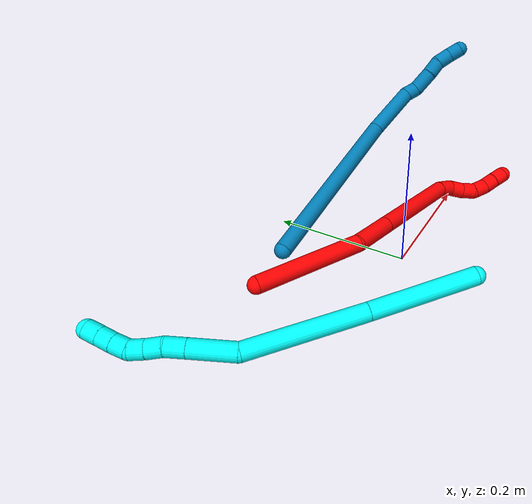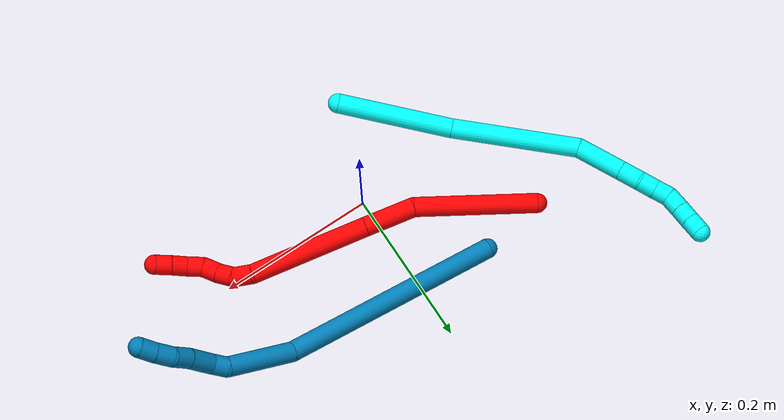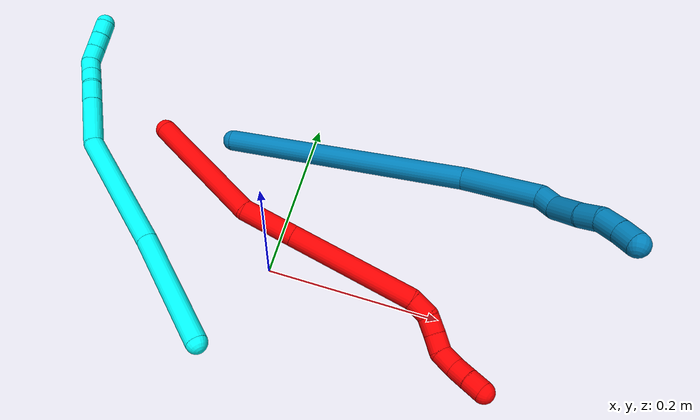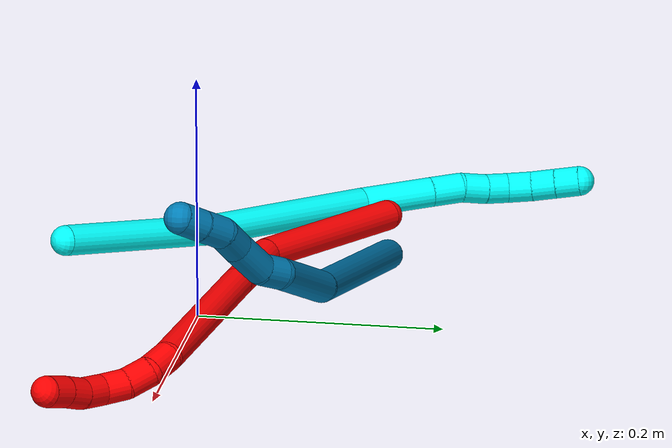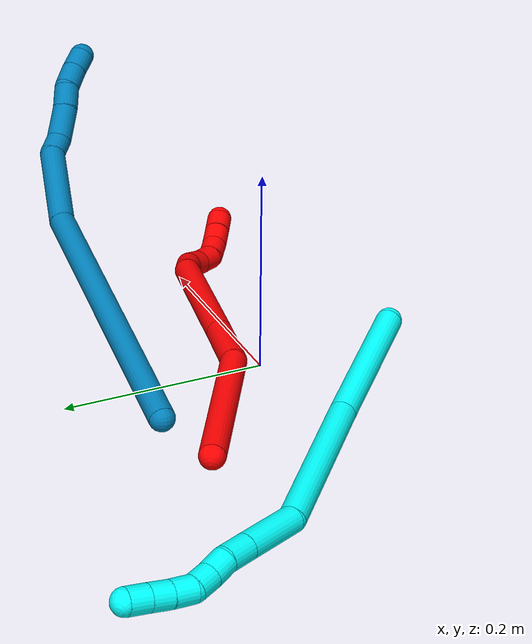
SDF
<sdf version="1.7">
 <world name="default">
  <model name="2">
   <static>0</static>
   <link name="2">
    <collision name="collision-cylinder-e_1_1_4">
     <pose>0.026012 -0.022038 0.069021 0.309059 0.344683 0.054216</pose>
     <geometry><cylinder><radius>0.0125</radius><length>0.153964</length></cylinder></geometry>
     <surface>
      <friction><ode><mu>1.16</mu><mu2>1.16</mu2><slip1>0</slip1><slip2>0</slip2></ode></friction>
      <contact><ode><kp>1e+06</kp><kd>1</kd><max_vel>0</max_vel><min_depth>0.001</min_depth></ode></contact>
     </surface>
    </collision>
    <visual name="visual-cylinder-e_1_1_4">
     <pose>0.026012 -0.022038 0.069021 0.309059 0.344683 0.054216</pose>
     <geometry><cylinder><radius>0.0125</radius><length>0.153964</length></cylinder></geometry>
     <material><ambient>1 0 0 1</ambient></material>
    </visual>
    <collision name="collision-cylinder-e_2_4_5">
     <pose>0.071342 -0.04641 0.163694 0.090748 0.643478 0.030267</pose>
     <geometry><cylinder><radius>0.0125</radius><length>0.064394</length></cylinder></geometry>
     <surface>
      <friction><ode><mu>1.16</mu><mu2>1.16</mu2><slip1>0</slip1><slip2>0</slip2></ode></friction>
      <contact><ode><kp>1e+06</kp><kd>1</kd><max_vel>0</max_vel><min_depth>0.001</min_depth></ode></contact>
     </surface>
    </collision>
    <visual name="visual-cylinder-e_2_4_5">
     <pose>0.071342 -0.04641 0.163694 0.090748 0.643478 0.030267</pose>
     <geometry><cylinder><radius>0.0125</radius><length>0.064394</length></cylinder></geometry>
     <material><ambient>1 0 0 1</ambient></material>
    </visual>
    <collision name="collision-cylinder-e_3_5_6">
     <pose>0.136971 -0.054168 0.249403 0.090072 0.654928 0.030615</pose>
     <geometry><cylinder><radius>0.0125</radius><length>0.152067</length></cylinder></geometry>
     <surface>
      <friction><ode><mu>1.16</mu><mu2>1.16</mu2><slip1>0</slip1><slip2>0</slip2></ode></friction>
      <contact><ode><kp>1e+06</kp><kd>1</kd><max_vel>0</max_vel><min_depth>0.001</min_depth></ode></contact>
     </surface>
    </collision>
    <visual name="visual-cylinder-e_3_5_6">
     <pose>0.136971 -0.054168 0.249403 0.090072 0.654928 0.030615</pose>
     <geometry><cylinder><radius>0.0125</radius><length>0.152067</length></cylinder></geometry>
     <material><ambient>1 0 0 1</ambient></material>
    </visual>
    <collision name="collision-cylinder-e_4_6_7">
     <pose>0.190024 -0.064096 0.318446 0.464582 0.590758 0.143714</pose>
     <geometry><cylinder><radius>0.0125</radius><length>0.024205</length></cylinder></geometry>
     <surface>
      <friction><ode><mu>1.16</mu><mu2>1.16</mu2><slip1>0</slip1><slip2>0</slip2></ode></friction>
      <contact><ode><kp>1e+06</kp><kd>1</kd><max_vel>0</max_vel><min_depth>0.001</min_depth></ode></contact>
     </surface>
    </collision>
    <visual name="visual-cylinder-e_4_6_7">
     <pose>0.190024 -0.064096 0.318446 0.464582 0.590758 0.143714</pose>
     <geometry><cylinder><radius>0.0125</radius><length>0.024205</length></cylinder></geometry>
     <material><ambient>1 0 0 1</ambient></material>
    </visual>
    <collision name="collision-cylinder-e_5_7_8">
     <pose>0.200388 -0.076522 0.334167 0.866286 0.335255 0.156182</pose>
     <geometry><cylinder><radius>0.0125</radius><length>0.022021</length></cylinder></geometry>
     <surface>
      <friction><ode><mu>1.16</mu><mu2>1.16</mu2><slip1>0</slip1><slip2>0</slip2></ode></friction>
      <contact><ode><kp>1e+06</kp><kd>1</kd><max_vel>0</max_vel><min_depth>0.001</min_depth></ode></contact>
     </surface>
    </collision>
    <visual name="visual-cylinder-e_5_7_8">
     <pose>0.200388 -0.076522 0.334167 0.866286 0.335255 0.156182</pose>
     <geometry><cylinder><radius>0.0125</radius><length>0.022021</length></cylinder></geometry>
     <material><ambient>1 0 0 1</ambient></material>
    </visual>
    <collision name="collision-cylinder-e_6_8_9">
     <pose>0.205134 -0.091617 0.348557 0.75278 0.106713 0.04221</pose>
     <geometry><cylinder><radius>0.0125</radius><length>0.021103</length></cylinder></geometry>
     <surface>
      <friction><ode><mu>1.16</mu><mu2>1.16</mu2><slip1>0</slip1><slip2>0</slip2></ode></friction>
      <contact><ode><kp>1e+06</kp><kd>1</kd><max_vel>0</max_vel><min_depth>0.001</min_depth></ode></contact>
     </surface>
    </collision>
    <visual name="visual-cylinder-e_6_8_9">
     <pose>0.205134 -0.091617 0.348557 0.75278 0.106713 0.04221</pose>
     <geometry><cylinder><radius>0.0125</radius><length>0.021103</length></cylinder></geometry>
     <material><ambient>1 0 0 1</ambient></material>
    </visual>
    <collision name="collision-cylinder-e_7_9_10">
     <pose>0.208997 -0.10191 0.366381 0.297818 0.252029 0.038006</pose>
     <geometry><cylinder><radius>0.0125</radius><length>0.021965</length></cylinder></geometry>
     <surface>
      <friction><ode><mu>1.16</mu><mu2>1.16</mu2><slip1>0</slip1><slip2>0</slip2></ode></friction>
      <contact><ode><kp>1e+06</kp><kd>1</kd><max_vel>0</max_vel><min_depth>0.001</min_depth></ode></contact>
     </surface>
    </collision>
    <visual name="visual-cylinder-e_7_9_10">
     <pose>0.208997 -0.10191 0.366381 0.297818 0.252029 0.038006</pose>
     <geometry><cylinder><radius>0.0125</radius><length>0.021965</length></cylinder></geometry>
     <material><ambient>1 0 0 1</ambient></material>
    </visual>
    <collision name="collision-cylinder-e_8_10_11">
     <pose>0.212704 -0.106407 0.38647 0.137835 0.096401 0.006659</pose>
     <geometry><cylinder><radius>0.0125</radius><length>0.020127</length></cylinder></geometry>
     <surface>
      <friction><ode><mu>1.16</mu><mu2>1.16</mu2><slip1>0</slip1><slip2>0</slip2></ode></friction>
      <contact><ode><kp>1e+06</kp><kd>1</kd><max_vel>0</max_vel><min_depth>0.001</min_depth></ode></contact>
     </surface>
    </collision>
    <visual name="visual-cylinder-e_8_10_11">
     <pose>0.212704 -0.106407 0.38647 0.137835 0.096401 0.006659</pose>
     <geometry><cylinder><radius>0.0125</radius><length>0.020127</length></cylinder></geometry>
     <material><ambient>1 0 0 1</ambient></material>
    </visual>
    <collision name="collision-cylinder-e_9_11_2">
     <pose>0.215347 -0.109357 0.406204 0.159008 0.16694 0.013331</pose>
     <geometry><cylinder><radius>0.0125</radius><length>0.020154</length></cylinder></geometry>
     <surface>
      <friction><ode><mu>1.16</mu><mu2>1.16</mu2><slip1>0</slip1><slip2>0</slip2></ode></friction>
      <contact><ode><kp>1e+06</kp><kd>1</kd><max_vel>0</max_vel><min_depth>0.001</min_depth></ode></contact>
     </surface>
    </collision>
    <visual name="visual-cylinder-e_9_11_2">
     <pose>0.215347 -0.109357 0.406204 0.159008 0.16694 0.013331</pose>
     <geometry><cylinder><radius>0.0125</radius><length>0.020154</length></cylinder></geometry>
     <material><ambient>1 0 0 1</ambient></material>
    </visual>
    <collision name="collision-sphere-2">
     <pose>0.217022 -0.11093 0.416016 0 -0 0</pose>
     <geometry><sphere><radius>0.0125</radius></sphere></geometry>
     <surface>
      <friction><ode><mu>1.16</mu><mu2>1.16</mu2><slip1>0</slip1><slip2>0</slip2></ode></friction>
      <contact><ode><kp>1e+06</kp><kd>1</kd><max_vel>0</max_vel><min_depth>0.001</min_depth></ode></contact>
     </surface>
    </collision>
    <visual name="visual-sphere-2">
     <pose>0.217022 -0.11093 0.416016 0 -0 0</pose>
     <geometry><sphere><radius>0.0125</radius></sphere></geometry>
     <material><ambient>1 0 0 1</ambient></material>
    </visual>
    <collision name="collision-sphere-11">
     <pose>0.213673 -0.107784 0.396392 0 -0 0</pose>
     <geometry><sphere><radius>0.0125</radius></sphere></geometry>
     <surface>
      <friction><ode><mu>1.16</mu><mu2>1.16</mu2><slip1>0</slip1><slip2>0</slip2></ode></friction>
      <contact><ode><kp>1e+06</kp><kd>1</kd><max_vel>0</max_vel><min_depth>0.001</min_depth></ode></contact>
     </surface>
    </collision>
    <visual name="visual-sphere-11">
     <pose>0.213673 -0.107784 0.396392 0 -0 0</pose>
     <geometry><sphere><radius>0.0125</radius></sphere></geometry>
     <material><ambient>1 0 0 1</ambient></material>
    </visual>
    <collision name="collision-sphere-10">
     <pose>0.211736 -0.105031 0.376548 0 -0 0</pose>
     <geometry><sphere><radius>0.0125</radius></sphere></geometry>
     <surface>
      <friction><ode><mu>1.16</mu><mu2>1.16</mu2><slip1>0</slip1><slip2>0</slip2></ode></friction>
      <contact><ode><kp>1e+06</kp><kd>1</kd><max_vel>0</max_vel><min_depth>0.001</min_depth></ode></contact>
     </surface>
    </collision>
    <visual name="visual-sphere-10">
     <pose>0.211736 -0.105031 0.376548 0 -0 0</pose>
     <geometry><sphere><radius>0.0125</radius></sphere></geometry>
     <material><ambient>1 0 0 1</ambient></material>
    </visual>
    <collision name="collision-sphere-9">
     <pose>0.206258 -0.098789 0.356214 0 -0 0</pose>
     <geometry><sphere><radius>0.0125</radius></sphere></geometry>
     <surface>
      <friction><ode><mu>1.16</mu><mu2>1.16</mu2><slip1>0</slip1><slip2>0</slip2></ode></friction>
      <contact><ode><kp>1e+06</kp><kd>1</kd><max_vel>0</max_vel><min_depth>0.001</min_depth></ode></contact>
     </surface>
    </collision>
    <visual name="visual-sphere-9">
     <pose>0.206258 -0.098789 0.356214 0 -0 0</pose>
     <geometry><sphere><radius>0.0125</radius></sphere></geometry>
     <material><ambient>1 0 0 1</ambient></material>
    </visual>
    <collision name="collision-sphere-4">
     <pose>0.052024 -0.044076 0.138042 0 -0 0</pose>
     <geometry><sphere><radius>0.0125</radius></sphere></geometry>
     <surface>
      <friction><ode><mu>1.16</mu><mu2>1.16</mu2><slip1>0</slip1><slip2>0</slip2></ode></friction>
      <contact><ode><kp>1e+06</kp><kd>1</kd><max_vel>0</max_vel><min_depth>0.001</min_depth></ode></contact>
     </surface>
    </collision>
    <visual name="visual-sphere-4">
     <pose>0.052024 -0.044076 0.138042 0 -0 0</pose>
     <geometry><sphere><radius>0.0125</radius></sphere></geometry>
     <material><ambient>1 0 0 1</ambient></material>
    </visual>
    <collision name="collision-sphere-1">
     <geometry><sphere><radius>0.0125</radius></sphere></geometry>
     <surface>
      <friction><ode><mu>1.16</mu><mu2>1.16</mu2><slip1>0</slip1><slip2>0</slip2></ode></friction>
      <contact><ode><kp>1e+06</kp><kd>1</kd><max_vel>0</max_vel><min_depth>0.001</min_depth></ode></contact>
     </surface>
    </collision>
    <visual name="visual-sphere-1">
     <geometry><sphere><radius>0.0125</radius></sphere></geometry>
     <material><ambient>1 0 0 1</ambient></material>
    </visual>
    <collision name="collision-sphere-8">
     <pose>0.204011 -0.084444 0.340901 0 -0 0</pose>
     <geometry><sphere><radius>0.0125</radius></sphere></geometry>
     <surface>
      <friction><ode><mu>1.16</mu><mu2>1.16</mu2><slip1>0</slip1><slip2>0</slip2></ode></friction>
      <contact><ode><kp>1e+06</kp><kd>1</kd><max_vel>0</max_vel><min_depth>0.001</min_depth></ode></contact>
     </surface>
    </collision>
    <visual name="visual-sphere-8">
     <pose>0.204011 -0.084444 0.340901 0 -0 0</pose>
     <geometry><sphere><radius>0.0125</radius></sphere></geometry>
     <material><ambient>1 0 0 1</ambient></material>
    </visual>
    <collision name="collision-sphere-5">
     <pose>0.090659 -0.048744 0.189346 0 -0 0</pose>
     <geometry><sphere><radius>0.0125</radius></sphere></geometry>
     <surface>
      <friction><ode><mu>1.16</mu><mu2>1.16</mu2><slip1>0</slip1><slip2>0</slip2></ode></friction>
      <contact><ode><kp>1e+06</kp><kd>1</kd><max_vel>0</max_vel><min_depth>0.001</min_depth></ode></contact>
     </surface>
    </collision>
    <visual name="visual-sphere-5">
     <pose>0.090659 -0.048744 0.189346 0 -0 0</pose>
     <geometry><sphere><radius>0.0125</radius></sphere></geometry>
     <material><ambient>1 0 0 1</ambient></material>
    </visual>
    <collision name="collision-sphere-6">
     <pose>0.183283 -0.059592 0.30946 0 -0 0</pose>
     <geometry><sphere><radius>0.0125</radius></sphere></geometry>
     <surface>
      <friction><ode><mu>1.16</mu><mu2>1.16</mu2><slip1>0</slip1><slip2>0</slip2></ode></friction>
      <contact><ode><kp>1e+06</kp><kd>1</kd><max_vel>0</max_vel><min_depth>0.001</min_depth></ode></contact>
     </surface>
    </collision>
    <visual name="visual-sphere-6">
     <pose>0.183283 -0.059592 0.30946 0 -0 0</pose>
     <geometry><sphere><radius>0.0125</radius></sphere></geometry>
     <material><ambient>1 0 0 1</ambient></material>
    </visual>
    <collision name="collision-sphere-7">
     <pose>0.196766 -0.0686 0.327433 0 -0 0</pose>
     <geometry><sphere><radius>0.0125</radius></sphere></geometry>
     <surface>
      <friction><ode><mu>1.16</mu><mu2>1.16</mu2><slip1>0</slip1><slip2>0</slip2></ode></friction>
      <contact><ode><kp>1e+06</kp><kd>1</kd><max_vel>0</max_vel><min_depth>0.001</min_depth></ode></contact>
     </surface>
    </collision>
    <visual name="visual-sphere-7">
     <pose>0.196766 -0.0686 0.327433 0 -0 0</pose>
     <geometry><sphere><radius>0.0125</radius></sphere></geometry>
     <material><ambient>1 0 0 1</ambient></material>
    </visual>
    <inertial>
     <pose>0.111962 -0.052746 0.211058 0 -0 0</pose>
     <mass>0.5</mass>
     <inertia>
      <ixx>0.000599</ixx>
      <ixy>0</ixy>
      <ixz>0</ixz>
      <iyy>0.000644</iyy>
      <iyz>0</iyz>
      <izz>-0.000156</izz>
     </inertia>
    </inertial>
   </link>
   <pose>-0.177304 0.127289 0.032581 0.840069 0.752347 0.495847</pose>
  </model>
  <model name="3">
   <static>0</static>
   <link name="3">
    <collision name="collision-cylinder-e_1_1_4">
     <pose>0.000209 -0.001798 0.072983 0.024633 0.002867 3.5e-05</pose>
     <geometry><cylinder><radius>0.0125</radius><length>0.146011</length></cylinder></geometry>
     <surface>
      <friction><ode><mu>1.16</mu><mu2>1.16</mu2><slip1>0</slip1><slip2>0</slip2></ode></friction>
      <contact><ode><kp>1e+06</kp><kd>1</kd><max_vel>0</max_vel><min_depth>0.001</min_depth></ode></contact>
     </surface>
    </collision>
    <visual name="visual-cylinder-e_1_1_4">
     <pose>0.000209 -0.001798 0.072983 0.024633 0.002867 3.5e-05</pose>
     <geometry><cylinder><radius>0.0125</radius><length>0.146011</length></cylinder></geometry>
     <material><ambient>0.003922 1 0.996078 1</ambient></material>
    </visual>
    <collision name="collision-cylinder-e_2_4_5">
     <pose>0.006374 -0.001584 0.227092 -0.024794 0.073257 -0.000909</pose>
     <geometry><cylinder><radius>0.0125</radius><length>0.162738</length></cylinder></geometry>
     <surface>
      <friction><ode><mu>1.16</mu><mu2>1.16</mu2><slip1>0</slip1><slip2>0</slip2></ode></friction>
      <contact><ode><kp>1e+06</kp><kd>1</kd><max_vel>0</max_vel><min_depth>0.001</min_depth></ode></contact>
     </surface>
    </collision>
    <visual name="visual-cylinder-e_2_4_5">
     <pose>0.006374 -0.001584 0.227092 -0.024794 0.073257 -0.000909</pose>
     <geometry><cylinder><radius>0.0125</radius><length>0.162738</length></cylinder></geometry>
     <material><ambient>0.003922 1 0.996078 1</ambient></material>
    </visual>
    <collision name="collision-cylinder-e_3_5_6">
     <pose>0.005232 0.009279 0.336535 -0.302951 -0.234828 0.036007</pose>
     <geometry><cylinder><radius>0.0125</radius><length>0.061012</length></cylinder></geometry>
     <surface>
      <friction><ode><mu>1.16</mu><mu2>1.16</mu2><slip1>0</slip1><slip2>0</slip2></ode></friction>
      <contact><ode><kp>1e+06</kp><kd>1</kd><max_vel>0</max_vel><min_depth>0.001</min_depth></ode></contact>
     </surface>
    </collision>
    <visual name="visual-cylinder-e_3_5_6">
     <pose>0.005232 0.009279 0.336535 -0.302951 -0.234828 0.036007</pose>
     <geometry><cylinder><radius>0.0125</radius><length>0.061012</length></cylinder></geometry>
     <material><ambient>0.003922 1 0.996078 1</ambient></material>
    </visual>
    <collision name="collision-cylinder-e_4_6_7">
     <pose>-0.004971 0.021889 0.377201 -0.295496 -0.23606 0.035294</pose>
     <geometry><cylinder><radius>0.0125</radius><length>0.026551</length></cylinder></geometry>
     <surface>
      <friction><ode><mu>1.16</mu><mu2>1.16</mu2><slip1>0</slip1><slip2>0</slip2></ode></friction>
      <contact><ode><kp>1e+06</kp><kd>1</kd><max_vel>0</max_vel><min_depth>0.001</min_depth></ode></contact>
     </surface>
    </collision>
    <visual name="visual-cylinder-e_4_6_7">
     <pose>-0.004971 0.021889 0.377201 -0.295496 -0.23606 0.035294</pose>
     <geometry><cylinder><radius>0.0125</radius><length>0.026551</length></cylinder></geometry>
     <material><ambient>0.003922 1 0.996078 1</ambient></material>
    </visual>
    <collision name="collision-cylinder-e_5_7_8">
     <pose>-0.011036 0.026255 0.399893 -0.058655 -0.278266 0.008216</pose>
     <geometry><cylinder><radius>0.0125</radius><length>0.021553</length></cylinder></geometry>
     <surface>
      <friction><ode><mu>1.16</mu><mu2>1.16</mu2><slip1>0</slip1><slip2>0</slip2></ode></friction>
      <contact><ode><kp>1e+06</kp><kd>1</kd><max_vel>0</max_vel><min_depth>0.001</min_depth></ode></contact>
     </surface>
    </collision>
    <visual name="visual-cylinder-e_5_7_8">
     <pose>-0.011036 0.026255 0.399893 -0.058655 -0.278266 0.008216</pose>
     <geometry><cylinder><radius>0.0125</radius><length>0.021553</length></cylinder></geometry>
     <material><ambient>0.003922 1 0.996078 1</ambient></material>
    </visual>
    <collision name="collision-cylinder-e_6_8_9">
     <pose>-0.016438 0.028509 0.419985 -0.167293 -0.242179 0.020404</pose>
     <geometry><cylinder><radius>0.0125</radius><length>0.020368</length></cylinder></geometry>
     <surface>
      <friction><ode><mu>1.16</mu><mu2>1.16</mu2><slip1>0</slip1><slip2>0</slip2></ode></friction>
      <contact><ode><kp>1e+06</kp><kd>1</kd><max_vel>0</max_vel><min_depth>0.001</min_depth></ode></contact>
     </surface>
    </collision>
    <visual name="visual-cylinder-e_6_8_9">
     <pose>-0.016438 0.028509 0.419985 -0.167293 -0.242179 0.020404</pose>
     <geometry><cylinder><radius>0.0125</radius><length>0.020368</length></cylinder></geometry>
     <material><ambient>0.003922 1 0.996078 1</ambient></material>
    </visual>
    <collision name="collision-cylinder-e_7_9_10">
     <pose>-0.024339 0.034706 0.437724 -0.517794 -0.53568 0.145107</pose>
     <geometry><cylinder><radius>0.0125</radius><length>0.021385</length></cylinder></geometry>
     <surface>
      <friction><ode><mu>1.16</mu><mu2>1.16</mu2><slip1>0</slip1><slip2>0</slip2></ode></friction>
      <contact><ode><kp>1e+06</kp><kd>1</kd><max_vel>0</max_vel><min_depth>0.001</min_depth></ode></contact>
     </surface>
    </collision>
    <visual name="visual-cylinder-e_7_9_10">
     <pose>-0.024339 0.034706 0.437724 -0.517794 -0.53568 0.145107</pose>
     <geometry><cylinder><radius>0.0125</radius><length>0.021385</length></cylinder></geometry>
     <material><ambient>0.003922 1 0.996078 1</ambient></material>
    </visual>
    <collision name="collision-cylinder-e_8_10_11">
     <pose>-0.034874 0.044125 0.452839 -0.599276 -0.53186 0.167903</pose>
     <geometry><cylinder><radius>0.0125</radius><length>0.020025</length></cylinder></geometry>
     <surface>
      <friction><ode><mu>1.16</mu><mu2>1.16</mu2><slip1>0</slip1><slip2>0</slip2></ode></friction>
      <contact><ode><kp>1e+06</kp><kd>1</kd><max_vel>0</max_vel><min_depth>0.001</min_depth></ode></contact>
     </surface>
    </collision>
    <visual name="visual-cylinder-e_8_10_11">
     <pose>-0.034874 0.044125 0.452839 -0.599276 -0.53186 0.167903</pose>
     <geometry><cylinder><radius>0.0125</radius><length>0.020025</length></cylinder></geometry>
     <material><ambient>0.003922 1 0.996078 1</ambient></material>
    </visual>
    <collision name="collision-cylinder-e_9_11_2">
     <pose>-0.045045 0.053855 0.467314 -0.584526 -0.524061 0.161041</pose>
     <geometry><cylinder><radius>0.0125</radius><length>0.020357</length></cylinder></geometry>
     <surface>
      <friction><ode><mu>1.16</mu><mu2>1.16</mu2><slip1>0</slip1><slip2>0</slip2></ode></friction>
      <contact><ode><kp>1e+06</kp><kd>1</kd><max_vel>0</max_vel><min_depth>0.001</min_depth></ode></contact>
     </surface>
    </collision>
    <visual name="visual-cylinder-e_9_11_2">
     <pose>-0.045045 0.053855 0.467314 -0.584526 -0.524061 0.161041</pose>
     <geometry><cylinder><radius>0.0125</radius><length>0.020357</length></cylinder></geometry>
     <material><ambient>0.003922 1 0.996078 1</ambient></material>
    </visual>
    <collision name="collision-sphere-2">
     <pose>-0.050139 0.058718 0.474664 0 -0 0</pose>
     <geometry><sphere><radius>0.0125</radius></sphere></geometry>
     <surface>
      <friction><ode><mu>1.16</mu><mu2>1.16</mu2><slip1>0</slip1><slip2>0</slip2></ode></friction>
      <contact><ode><kp>1e+06</kp><kd>1</kd><max_vel>0</max_vel><min_depth>0.001</min_depth></ode></contact>
     </surface>
    </collision>
    <visual name="visual-sphere-2">
     <pose>-0.050139 0.058718 0.474664 0 -0 0</pose>
     <geometry><sphere><radius>0.0125</radius></sphere></geometry>
     <material><ambient>0.003922 1 0.996078 1</ambient></material>
    </visual>
    <collision name="collision-sphere-11">
     <pose>-0.039952 0.048992 0.459965 0 -0 0</pose>
     <geometry><sphere><radius>0.0125</radius></sphere></geometry>
     <surface>
      <friction><ode><mu>1.16</mu><mu2>1.16</mu2><slip1>0</slip1><slip2>0</slip2></ode></friction>
      <contact><ode><kp>1e+06</kp><kd>1</kd><max_vel>0</max_vel><min_depth>0.001</min_depth></ode></contact>
     </surface>
    </collision>
    <visual name="visual-sphere-11">
     <pose>-0.039952 0.048992 0.459965 0 -0 0</pose>
     <geometry><sphere><radius>0.0125</radius></sphere></geometry>
     <material><ambient>0.003922 1 0.996078 1</ambient></material>
    </visual>
    <collision name="collision-sphere-10">
     <pose>-0.029796 0.039257 0.445713 0 -0 0</pose>
     <geometry><sphere><radius>0.0125</radius></sphere></geometry>
     <surface>
      <friction><ode><mu>1.16</mu><mu2>1.16</mu2><slip1>0</slip1><slip2>0</slip2></ode></friction>
      <contact><ode><kp>1e+06</kp><kd>1</kd><max_vel>0</max_vel><min_depth>0.001</min_depth></ode></contact>
     </surface>
    </collision>
    <visual name="visual-sphere-10">
     <pose>-0.029796 0.039257 0.445713 0 -0 0</pose>
     <geometry><sphere><radius>0.0125</radius></sphere></geometry>
     <material><ambient>0.003922 1 0.996078 1</ambient></material>
    </visual>
    <collision name="collision-sphere-9">
     <pose>-0.018881 0.030155 0.429734 0 -0 0</pose>
     <geometry><sphere><radius>0.0125</radius></sphere></geometry>
     <surface>
      <friction><ode><mu>1.16</mu><mu2>1.16</mu2><slip1>0</slip1><slip2>0</slip2></ode></friction>
      <contact><ode><kp>1e+06</kp><kd>1</kd><max_vel>0</max_vel><min_depth>0.001</min_depth></ode></contact>
     </surface>
    </collision>
    <visual name="visual-sphere-9">
     <pose>-0.018881 0.030155 0.429734 0 -0 0</pose>
     <geometry><sphere><radius>0.0125</radius></sphere></geometry>
     <material><ambient>0.003922 1 0.996078 1</ambient></material>
    </visual>
    <collision name="collision-sphere-4">
     <pose>0.000419 -0.003596 0.145967 0 -0 0</pose>
     <geometry><sphere><radius>0.0125</radius></sphere></geometry>
     <surface>
      <friction><ode><mu>1.16</mu><mu2>1.16</mu2><slip1>0</slip1><slip2>0</slip2></ode></friction>
      <contact><ode><kp>1e+06</kp><kd>1</kd><max_vel>0</max_vel><min_depth>0.001</min_depth></ode></contact>
     </surface>
    </collision>
    <visual name="visual-sphere-4">
     <pose>0.000419 -0.003596 0.145967 0 -0 0</pose>
     <geometry><sphere><radius>0.0125</radius></sphere></geometry>
     <material><ambient>0.003922 1 0.996078 1</ambient></material>
    </visual>
    <collision name="collision-sphere-1">
     <geometry><sphere><radius>0.0125</radius></sphere></geometry>
     <surface>
      <friction><ode><mu>1.16</mu><mu2>1.16</mu2><slip1>0</slip1><slip2>0</slip2></ode></friction>
      <contact><ode><kp>1e+06</kp><kd>1</kd><max_vel>0</max_vel><min_depth>0.001</min_depth></ode></contact>
     </surface>
    </collision>
    <visual name="visual-sphere-1">
     <geometry><sphere><radius>0.0125</radius></sphere></geometry>
     <material><ambient>0.003922 1 0.996078 1</ambient></material>
    </visual>
    <collision name="collision-sphere-8">
     <pose>-0.013996 0.026862 0.410237 0 -0 0</pose>
     <geometry><sphere><radius>0.0125</radius></sphere></geometry>
     <surface>
      <friction><ode><mu>1.16</mu><mu2>1.16</mu2><slip1>0</slip1><slip2>0</slip2></ode></friction>
      <contact><ode><kp>1e+06</kp><kd>1</kd><max_vel>0</max_vel><min_depth>0.001</min_depth></ode></contact>
     </surface>
    </collision>
    <visual name="visual-sphere-8">
     <pose>-0.013996 0.026862 0.410237 0 -0 0</pose>
     <geometry><sphere><radius>0.0125</radius></sphere></geometry>
     <material><ambient>0.003922 1 0.996078 1</ambient></material>
    </visual>
    <collision name="collision-sphere-5">
     <pose>0.01233 0.000427 0.308218 0 -0 0</pose>
     <geometry><sphere><radius>0.0125</radius></sphere></geometry>
     <surface>
      <friction><ode><mu>1.16</mu><mu2>1.16</mu2><slip1>0</slip1><slip2>0</slip2></ode></friction>
      <contact><ode><kp>1e+06</kp><kd>1</kd><max_vel>0</max_vel><min_depth>0.001</min_depth></ode></contact>
     </surface>
    </collision>
    <visual name="visual-sphere-5">
     <pose>0.01233 0.000427 0.308218 0 -0 0</pose>
     <geometry><sphere><radius>0.0125</radius></sphere></geometry>
     <material><ambient>0.003922 1 0.996078 1</ambient></material>
    </visual>
    <collision name="collision-sphere-6">
     <pose>-0.001866 0.01813 0.364853 0 -0 0</pose>
     <geometry><sphere><radius>0.0125</radius></sphere></geometry>
     <surface>
      <friction><ode><mu>1.16</mu><mu2>1.16</mu2><slip1>0</slip1><slip2>0</slip2></ode></friction>
      <contact><ode><kp>1e+06</kp><kd>1</kd><max_vel>0</max_vel><min_depth>0.001</min_depth></ode></contact>
     </surface>
    </collision>
    <visual name="visual-sphere-6">
     <pose>-0.001866 0.01813 0.364853 0 -0 0</pose>
     <geometry><sphere><radius>0.0125</radius></sphere></geometry>
     <material><ambient>0.003922 1 0.996078 1</ambient></material>
    </visual>
    <collision name="collision-sphere-7">
     <pose>-0.008076 0.025648 0.389549 0 -0 0</pose>
     <geometry><sphere><radius>0.0125</radius></sphere></geometry>
     <surface>
      <friction><ode><mu>1.16</mu><mu2>1.16</mu2><slip1>0</slip1><slip2>0</slip2></ode></friction>
      <contact><ode><kp>1e+06</kp><kd>1</kd><max_vel>0</max_vel><min_depth>0.001</min_depth></ode></contact>
     </surface>
    </collision>
    <visual name="visual-sphere-7">
     <pose>-0.008076 0.025648 0.389549 0 -0 0</pose>
     <geometry><sphere><radius>0.0125</radius></sphere></geometry>
     <material><ambient>0.003922 1 0.996078 1</ambient></material>
    </visual>
    <inertial>
     <pose>-0.002907 0.008991 0.246551 0 -0 0</pose>
     <mass>0.5</mass>
     <inertia><ixx>0.000657</ixx><ixy>0</ixy><ixz>0</ixz><iyy>0.000666</iyy><iyz>0</iyz><izz>6e-06</izz></inertia>
    </inertial>
   </link>
   <pose>-0.040178 -0.115988 0.044074 1.70431 -0.409565 -2.40713</pose>
  </model>
  <model name="9">
   <static>0</static>
   <link name="9">
    <collision name="collision-cylinder-e_1_1_4">
     <pose>0.143326 -0.015126 0.001772 1.45418 1.46494 1.34968</pose>
     <geometry><cylinder><radius>0.0125</radius><length>0.288265</length></cylinder></geometry>
     <surface>
      <friction><ode><mu>1.16</mu><mu2>1.16</mu2><slip1>0</slip1><slip2>0</slip2></ode></friction>
      <contact><ode><kp>1e+06</kp><kd>1</kd><max_vel>0</max_vel><min_depth>0.001</min_depth></ode></contact>
     </surface>
    </collision>
    <visual name="visual-cylinder-e_1_1_4">
     <pose>0.143326 -0.015126 0.001772 1.45418 1.46494 1.34968</pose>
     <geometry><cylinder><radius>0.0125</radius><length>0.288265</length></cylinder></geometry>
     <material><ambient>0 0.490196 0.709804 1</ambient></material>
    </visual>
    <collision name="collision-cylinder-e_2_4_5">
     <pose>0.329931 -0.025925 0.012113 -0.467651 1.35253 -0.377727</pose>
     <geometry><cylinder><radius>0.0125</radius><length>0.088664</length></cylinder></geometry>
     <surface>
      <friction><ode><mu>1.16</mu><mu2>1.16</mu2><slip1>0</slip1><slip2>0</slip2></ode></friction>
      <contact><ode><kp>1e+06</kp><kd>1</kd><max_vel>0</max_vel><min_depth>0.001</min_depth></ode></contact>
     </surface>
    </collision>
    <visual name="visual-cylinder-e_2_4_5">
     <pose>0.329931 -0.025925 0.012113 -0.467651 1.35253 -0.377727</pose>
     <geometry><cylinder><radius>0.0125</radius><length>0.088664</length></cylinder></geometry>
     <material><ambient>0 0.490196 0.709804 1</ambient></material>
    </visual>
    <collision name="collision-cylinder-e_3_5_6">
     <pose>0.381365 -0.020299 0.026696 -0.212639 0.924383 -0.106234</pose>
     <geometry><cylinder><radius>0.0125</radius><length>0.020429</length></cylinder></geometry>
     <surface>
      <friction><ode><mu>1.16</mu><mu2>1.16</mu2><slip1>0</slip1><slip2>0</slip2></ode></friction>
      <contact><ode><kp>1e+06</kp><kd>1</kd><max_vel>0</max_vel><min_depth>0.001</min_depth></ode></contact>
     </surface>
    </collision>
    <visual name="visual-cylinder-e_3_5_6">
     <pose>0.381365 -0.020299 0.026696 -0.212639 0.924383 -0.106234</pose>
     <geometry><cylinder><radius>0.0125</radius><length>0.020429</length></cylinder></geometry>
     <material><ambient>0 0.490196 0.709804 1</ambient></material>
    </visual>
    <collision name="collision-cylinder-e_4_6_7">
     <pose>0.403319 -0.010975 0.039726 -0.852344 0.91308 -0.438779</pose>
     <geometry><cylinder><radius>0.0125</radius><length>0.034876</length></cylinder></geometry>
     <surface>
      <friction><ode><mu>1.16</mu><mu2>1.16</mu2><slip1>0</slip1><slip2>0</slip2></ode></friction>
      <contact><ode><kp>1e+06</kp><kd>1</kd><max_vel>0</max_vel><min_depth>0.001</min_depth></ode></contact>
     </surface>
    </collision>
    <visual name="visual-cylinder-e_4_6_7">
     <pose>0.403319 -0.010975 0.039726 -0.852344 0.91308 -0.438779</pose>
     <geometry><cylinder><radius>0.0125</radius><length>0.034876</length></cylinder></geometry>
     <material><ambient>0 0.490196 0.709804 1</ambient></material>
    </visual>
    <collision name="collision-cylinder-e_5_7_8">
     <pose>0.427264 0.002034 0.050322 -0.948062 1.02679 -0.563163</pose>
     <geometry><cylinder><radius>0.0125</radius><length>0.023712</length></cylinder></geometry>
     <surface>
      <friction><ode><mu>1.16</mu><mu2>1.16</mu2><slip1>0</slip1><slip2>0</slip2></ode></friction>
      <contact><ode><kp>1e+06</kp><kd>1</kd><max_vel>0</max_vel><min_depth>0.001</min_depth></ode></contact>
     </surface>
    </collision>
    <visual name="visual-cylinder-e_5_7_8">
     <pose>0.427264 0.002034 0.050322 -0.948062 1.02679 -0.563163</pose>
     <geometry><cylinder><radius>0.0125</radius><length>0.023712</length></cylinder></geometry>
     <material><ambient>0 0.490196 0.709804 1</ambient></material>
    </visual>
    <collision name="collision-cylinder-e_6_8_9">
     <pose>0.446662 0.009542 0.060478 -0.366338 0.920148 -0.18308</pose>
     <geometry><cylinder><radius>0.0125</radius><length>0.023259</length></cylinder></geometry>
     <surface>
      <friction><ode><mu>1.16</mu><mu2>1.16</mu2><slip1>0</slip1><slip2>0</slip2></ode></friction>
      <contact><ode><kp>1e+06</kp><kd>1</kd><max_vel>0</max_vel><min_depth>0.001</min_depth></ode></contact>
     </surface>
    </collision>
    <visual name="visual-cylinder-e_6_8_9">
     <pose>0.446662 0.009542 0.060478 -0.366338 0.920148 -0.18308</pose>
     <geometry><cylinder><radius>0.0125</radius><length>0.023259</length></cylinder></geometry>
     <material><ambient>0 0.490196 0.709804 1</ambient></material>
    </visual>
    <collision name="collision-cylinder-e_7_9_2">
     <pose>0.463635 0.014515 0.073575 -0.359433 0.83668 -0.161191</pose>
     <geometry><cylinder><radius>0.0125</radius><length>0.020795</length></cylinder></geometry>
     <surface>
      <friction><ode><mu>1.16</mu><mu2>1.16</mu2><slip1>0</slip1><slip2>0</slip2></ode></friction>
      <contact><ode><kp>1e+06</kp><kd>1</kd><max_vel>0</max_vel><min_depth>0.001</min_depth></ode></contact>
     </surface>
    </collision>
    <visual name="visual-cylinder-e_7_9_2">
     <pose>0.463635 0.014515 0.073575 -0.359433 0.83668 -0.161191</pose>
     <geometry><cylinder><radius>0.0125</radius><length>0.020795</length></cylinder></geometry>
     <material><ambient>0 0.490196 0.709804 1</ambient></material>
    </visual>
    <collision name="collision-sphere-2">
     <pose>0.471354 0.016966 0.080095 0 -0 0</pose>
     <geometry><sphere><radius>0.0125</radius></sphere></geometry>
     <surface>
      <friction><ode><mu>1.16</mu><mu2>1.16</mu2><slip1>0</slip1><slip2>0</slip2></ode></friction>
      <contact><ode><kp>1e+06</kp><kd>1</kd><max_vel>0</max_vel><min_depth>0.001</min_depth></ode></contact>
     </surface>
    </collision>
    <visual name="visual-sphere-2">
     <pose>0.471354 0.016966 0.080095 0 -0 0</pose>
     <geometry><sphere><radius>0.0125</radius></sphere></geometry>
     <material><ambient>0 0.490196 0.709804 1</ambient></material>
    </visual>
    <collision name="collision-sphere-9">
     <pose>0.455916 0.012065 0.067054 0 -0 0</pose>
     <geometry><sphere><radius>0.0125</radius></sphere></geometry>
     <surface>
      <friction><ode><mu>1.16</mu><mu2>1.16</mu2><slip1>0</slip1><slip2>0</slip2></ode></friction>
      <contact><ode><kp>1e+06</kp><kd>1</kd><max_vel>0</max_vel><min_depth>0.001</min_depth></ode></contact>
     </surface>
    </collision>
    <visual name="visual-sphere-9">
     <pose>0.455916 0.012065 0.067054 0 -0 0</pose>
     <geometry><sphere><radius>0.0125</radius></sphere></geometry>
     <material><ambient>0 0.490196 0.709804 1</ambient></material>
    </visual>
    <collision name="collision-sphere-4">
     <pose>0.286651 -0.030252 0.003544 0 -0 0</pose>
     <geometry><sphere><radius>0.0125</radius></sphere></geometry>
     <surface>
      <friction><ode><mu>1.16</mu><mu2>1.16</mu2><slip1>0</slip1><slip2>0</slip2></ode></friction>
      <contact><ode><kp>1e+06</kp><kd>1</kd><max_vel>0</max_vel><min_depth>0.001</min_depth></ode></contact>
     </surface>
    </collision>
    <visual name="visual-sphere-4">
     <pose>0.286651 -0.030252 0.003544 0 -0 0</pose>
     <geometry><sphere><radius>0.0125</radius></sphere></geometry>
     <material><ambient>0 0.490196 0.709804 1</ambient></material>
    </visual>
    <collision name="collision-sphere-1">
     <geometry><sphere><radius>0.0125</radius></sphere></geometry>
     <surface>
      <friction><ode><mu>1.16</mu><mu2>1.16</mu2><slip1>0</slip1><slip2>0</slip2></ode></friction>
      <contact><ode><kp>1e+06</kp><kd>1</kd><max_vel>0</max_vel><min_depth>0.001</min_depth></ode></contact>
     </surface>
    </collision>
    <visual name="visual-sphere-1">
     <geometry><sphere><radius>0.0125</radius></sphere></geometry>
     <material><ambient>0 0.490196 0.709804 1</ambient></material>
    </visual>
    <collision name="collision-sphere-8">
     <pose>0.437408 0.007019 0.053901 0 -0 0</pose>
     <geometry><sphere><radius>0.0125</radius></sphere></geometry>
     <surface>
      <friction><ode><mu>1.16</mu><mu2>1.16</mu2><slip1>0</slip1><slip2>0</slip2></ode></friction>
      <contact><ode><kp>1e+06</kp><kd>1</kd><max_vel>0</max_vel><min_depth>0.001</min_depth></ode></contact>
     </surface>
    </collision>
    <visual name="visual-sphere-8">
     <pose>0.437408 0.007019 0.053901 0 -0 0</pose>
     <geometry><sphere><radius>0.0125</radius></sphere></geometry>
     <material><ambient>0 0.490196 0.709804 1</ambient></material>
    </visual>
    <collision name="collision-sphere-5">
     <pose>0.373211 -0.021597 0.020682 0 -0 0</pose>
     <geometry><sphere><radius>0.0125</radius></sphere></geometry>
     <surface>
      <friction><ode><mu>1.16</mu><mu2>1.16</mu2><slip1>0</slip1><slip2>0</slip2></ode></friction>
      <contact><ode><kp>1e+06</kp><kd>1</kd><max_vel>0</max_vel><min_depth>0.001</min_depth></ode></contact>
     </surface>
    </collision>
    <visual name="visual-sphere-5">
     <pose>0.373211 -0.021597 0.020682 0 -0 0</pose>
     <geometry><sphere><radius>0.0125</radius></sphere></geometry>
     <material><ambient>0 0.490196 0.709804 1</ambient></material>
    </visual>
    <collision name="collision-sphere-6">
     <pose>0.389519 -0.019 0.03271 0 -0 0</pose>
     <geometry><sphere><radius>0.0125</radius></sphere></geometry>
     <surface>
      <friction><ode><mu>1.16</mu><mu2>1.16</mu2><slip1>0</slip1><slip2>0</slip2></ode></friction>
      <contact><ode><kp>1e+06</kp><kd>1</kd><max_vel>0</max_vel><min_depth>0.001</min_depth></ode></contact>
     </surface>
    </collision>
    <visual name="visual-sphere-6">
     <pose>0.389519 -0.019 0.03271 0 -0 0</pose>
     <geometry><sphere><radius>0.0125</radius></sphere></geometry>
     <material><ambient>0 0.490196 0.709804 1</ambient></material>
    </visual>
    <collision name="collision-sphere-7">
     <pose>0.417119 -0.00295 0.046743 0 -0 0</pose>
     <geometry><sphere><radius>0.0125</radius></sphere></geometry>
     <surface>
      <friction><ode><mu>1.16</mu><mu2>1.16</mu2><slip1>0</slip1><slip2>0</slip2></ode></friction>
      <contact><ode><kp>1e+06</kp><kd>1</kd><max_vel>0</max_vel><min_depth>0.001</min_depth></ode></contact>
     </surface>
    </collision>
    <visual name="visual-sphere-7">
     <pose>0.417119 -0.00295 0.046743 0 -0 0</pose>
     <geometry><sphere><radius>0.0125</radius></sphere></geometry>
     <material><ambient>0 0.490196 0.709804 1</ambient></material>
    </visual>
    <inertial>
     <pose>0.245175 -0.013769 0.015291 0 -0 0</pose>
     <mass>0.5</mass>
     <inertia>
      <ixx>0.000302</ixx>
      <ixy>0</ixy>
      <ixz>0</ixz>
      <iyy>0.002258</iyy>
      <iyz>0</iyz>
      <izz>-0.001859</izz>
     </inertia>
    </inertial>
   </link>
   <pose>-0.093854 0.140497 0.027604 1.60965 -0.350384 -0.024601</pose>
  </model>
 </world>
</sdf>
